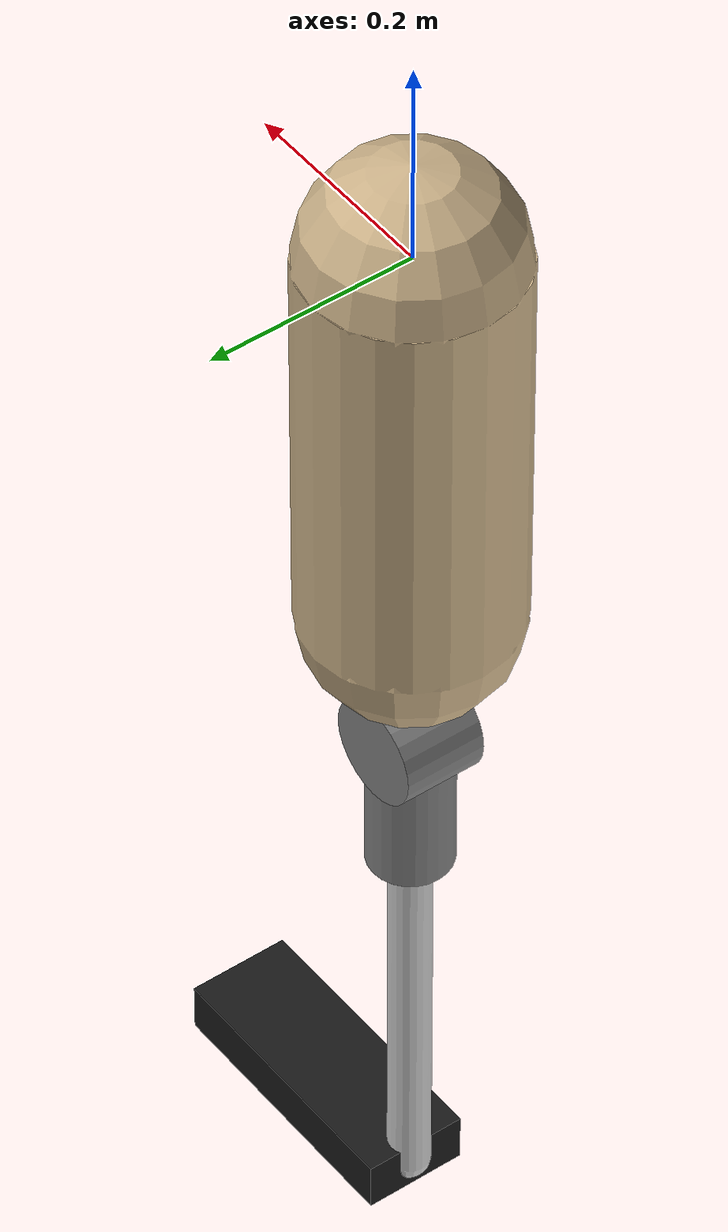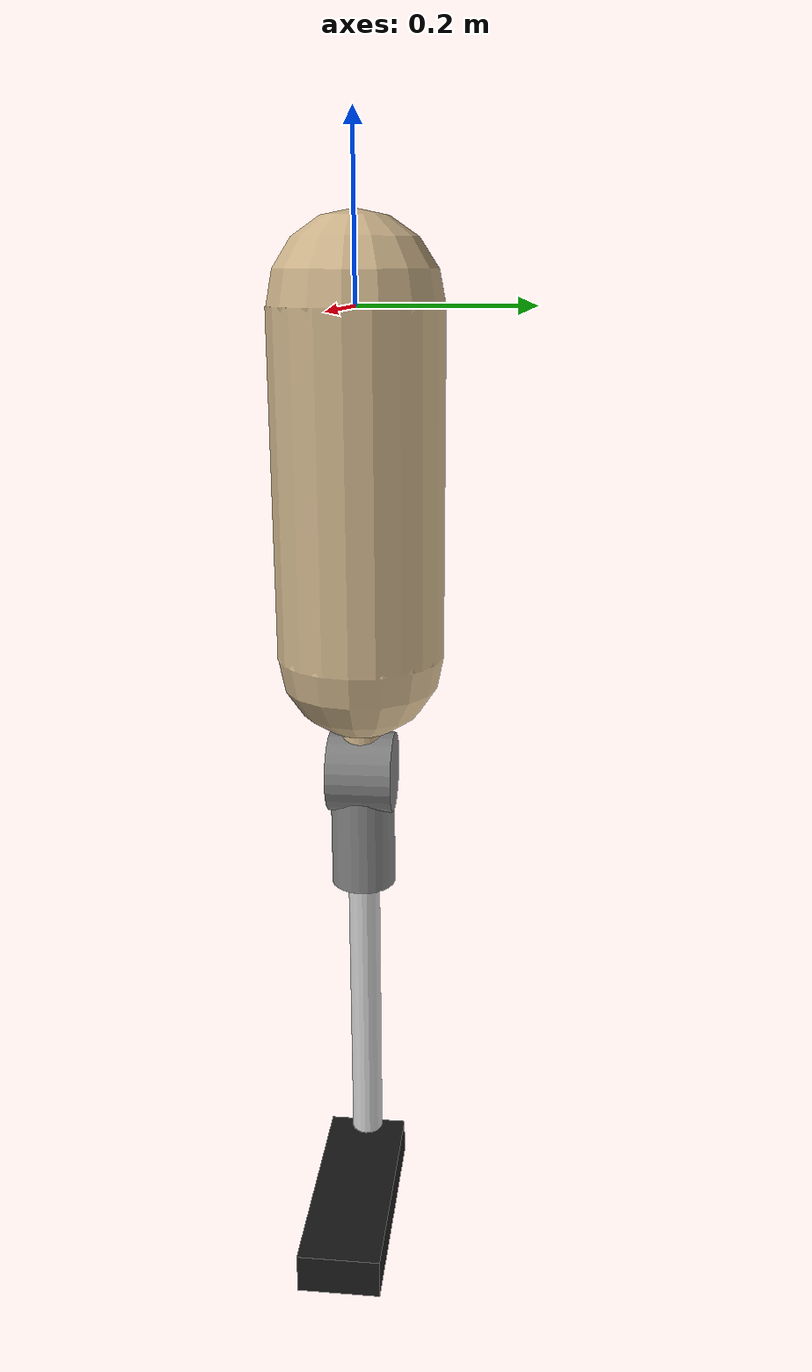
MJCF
<mujoco model="leg_prosthesis_model">
    <option timestep = "0.001"/>

    <visual>
        <headlight diffuse="0.4 0.4 0.4" ambient="0.2 0.2 0.2" specular="0 0 0"/>
        <rgba haze="0.1 0.1 0.1 1"/>
        <global azimuth="150" elevation="-20"/>
    </visual>

     <asset>
        <texture type="skybox" builtin="gradient" rgb1="0.3 0.5 0.7" rgb2="0 0 0" width="512" height="3072"/>
        <texture type="2d" name="groundplane" builtin="checker" mark="edge" rgb1="0.8 0.8 0.8" rgb2="0.4 0.4 0.4"
        markrgb="0.8 0.8 0.8" width="300" height="300"/>
        <material name="groundplane" texture="groundplane" texuniform="true" texrepeat="5 5" reflectance="0.2"/>
    </asset>

    <default>
        <joint axis="0 1 0"/>
        <geom type="capsule" size=".01" rgba=".9 .7 .1 1"/>
        <default class="joint">
            <geom type="cylinder" fromto="0 .015 0 0 -.015 0" size=".02" rgba=".3 .9 .3 .4"/>
        </default>
    </default>

    <worldbody>

        <light pos="0 0 3" dir="0 0 -1" directional="false"/>

        <geom name="floor" type="plane" size="10 10 0.1" pos="0 0 -2"
              rgba="0.6 0.6 0.6 1" condim="3"/>

        <body name = 'hip' pos="0 0 0">
            <joint name = 'q1' damping = '1'/>
            <geom name="g1" class="joint"/>
            <geom name = 'l1' fromto="0 0 0 0 0 -.40" size=".1" rgba=".8 .7 .54 1"/>
            <geom name = 'l1_con' type="cylinder" fromto="0 0 -.40 0 0 -.55" size=".025" rgba=".8 .7 .54 1"/>
            <!-- Масса бедра -->
            <inertial mass="5" pos="0 0 -0.275" diaginertia="0.06 0.06 0.02"/>
            <body name = 'knee_module' pos="0 0 -.55">
                <joint name = 'q2' damping = '0.01' range="0 71"/>
                <geom name="p_act" type="cylinder" fromto="0 .04 0 0 -.04 0" size=".05" rgba=".5 .5 .5 1"/>
                <geom name = 'p_main' type="cylinder" fromto="0 0 0 0 0 -.15" size=".04" rgba=".5 .5 .5 1"/>
                <site name="p_act" size='0.01 0.01 0.01' pos='0 0 0'/>
                <site name="imu" size='0.01 0.01 0.01' pos='0 0 -0.10'/>
                <!-- Масса колена -->
                <inertial mass="2.0" pos="0 0 -0.075" diaginertia="0.02 0.02 0.01"/>
                <body name = 'carrier_module' pos="0 0 -.15">
                    <geom name = 'carrier_module' fromto="0 0 0 0 0 -.40" size=".02" rgba=".8 .8 .8 1"/>
                    <!-- Масса носителя -->
                    <inertial mass="0.8" pos="0 0 -0.2" diaginertia="0.01 0.01 0.005"/>
                    <body name = 'foot' pos="0 0 -0.40">
                        <geom name = 'foot' type='box' pos="0.125 0 0" size="0.135 0.05 0.025" rgba=".1 .1 .1 1"/>
                        <!-- Масса стопы -->
                        <inertial mass="1" pos="0.125 0 0" diaginertia="0.005 0.01 0.008"/>
                    </body>
                </body>
            </body>
        </body>
    </worldbody>

    <actuator>
        <position name="pos_q1" joint="q1" ctrllimited="true" ctrlrange="-0.7 0.436332" kp="5000" kv="100"/>
        <position name="pos_q2" joint="q2" ctrllimited="true" ctrlrange="0 1.22173" kp="20" kv="0.1"/>
    </actuator>
</mujoco>
